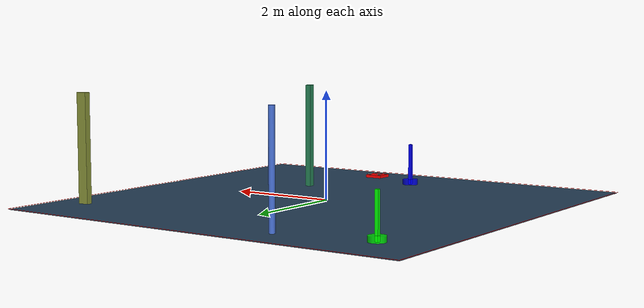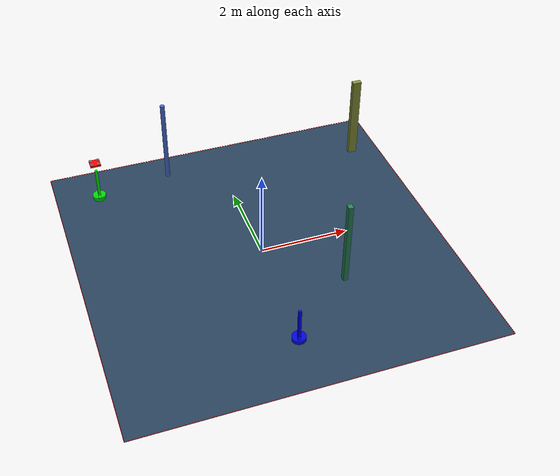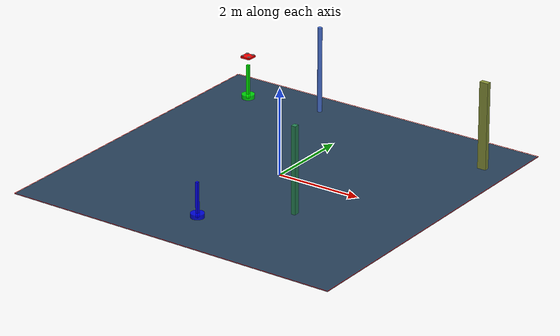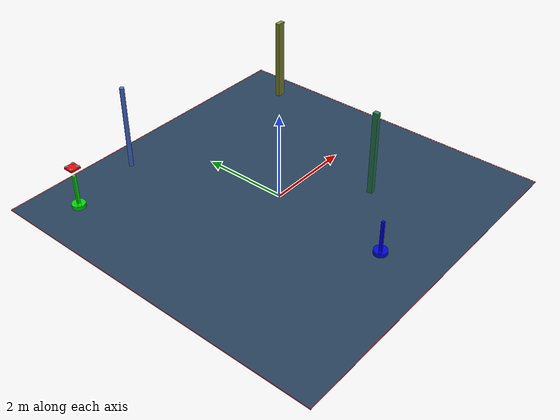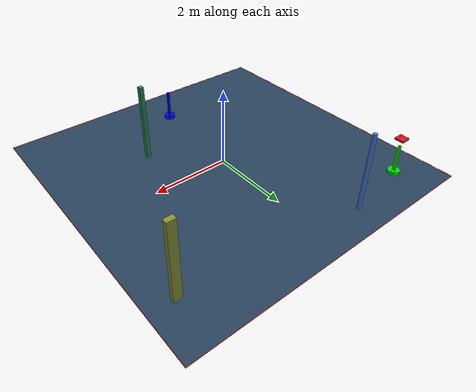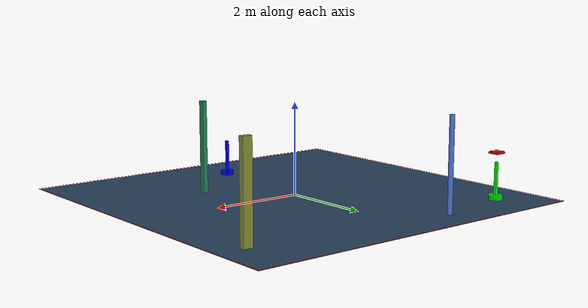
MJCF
<?xml version='1.0' encoding='utf-8'?>
<mujoco model="complex_uav_env">
  <compiler angle="degree" coordinate="local" inertiafromgeom="true" />
  <option integrator="RK4" timestep="0.01" />

  <visual>
    <headlight diffuse="0.6 0.6 0.6" ambient="0.3 0.3 0.3" />
    <rgba haze="0.15 0.25 0.35 1" />
    <global offwidth="2560" offheight="1440" />
  </visual>

  <asset>
    <texture type="skybox" builtin="gradient" rgb1="0.3 0.5 0.7" rgb2="0 0 0" width="512" height="3072" />
    <texture name="grid" type="2d" builtin="checker" rgb1="0.1 0.2 0.3" rgb2="0.2 0.3 0.4" width="512" height="512" />
    <material name="grid" texture="grid" texrepeat="1 1" />
  </asset>

  <worldbody>

    <geom name="ground" type="plane" size="4.0 4.0 0.1" material="grid" />
    <light name="light1" pos="0 0 4" dir="0 0 -1" diffuse="1 1 1" />

    <geom name="start_marker" type="cylinder" size="0.15 0.05" pos="-3.0 3.0 0.05" rgba="0 1 0 0.8" />
    <geom name="start_pole" type="box" size="0.03 0.03 0.4" pos="-3.0 3.0 0.4" rgba="0 1 0 1" />

    <geom name="goal_marker" type="cylinder" size="0.15 0.05" pos="-0.15718928223503115 -2.718806011651705 0.05" rgba="0 0 1 0.8" />
    <geom name="goal_pole" type="box" size="0.03 0.03 0.4" pos="-0.15718928223503115 -2.718806011651705 0.4" rgba="0 0 1 1" />

    <body name="chassis" pos="-3.0 3.0 1.0">
      <joint type="free" name="root" />
      <geom type="box" size="0.12 0.12 0.02" rgba="1.0 0.0 0.0 1.0" mass="0.8" />

      <geom type="box" size="0.08 0.01 0.005" pos="0 0 0.01" rgba="0.3 0.3 0.3 1" />
      <geom type="box" size="0.01 0.08 0.005" pos="0 0 0.01" rgba="0.3 0.3 0.3 1" />

      <geom type="cylinder" size="0.015 0.02" pos="0.08 0.08 0.015" rgba="0.2 0.2 0.2 1" />
      <geom type="cylinder" size="0.015 0.02" pos="-0.08 0.08 0.015" rgba="0.2 0.2 0.2 1" />
      <geom type="cylinder" size="0.015 0.02" pos="0.08 -0.08 0.015" rgba="0.2 0.2 0.2 1" />
      <geom type="cylinder" size="0.015 0.02" pos="-0.08 -0.08 0.015" rgba="0.2 0.2 0.2 1" />

      <geom type="cylinder" size="0.04 0.002" pos="0.08 0.08 0.035" rgba="0.7 0.7 0.7 0.8" />
      <geom type="cylinder" size="0.04 0.002" pos="-0.08 0.08 0.035" rgba="0.7 0.7 0.7 0.8" />
      <geom type="cylinder" size="0.04 0.002" pos="0.08 -0.08 0.035" rgba="0.7 0.7 0.7 0.8" />
      <geom type="cylinder" size="0.04 0.002" pos="-0.08 -0.08 0.035" rgba="0.7 0.7 0.7 0.8" />

      <site name="motor1" pos="0.08 0.08 0" size="0.01" />
      <site name="motor2" pos="-0.08 0.08 0" size="0.01" />
      <site name="motor3" pos="0.08 -0.08 0" size="0.01" />
      <site name="motor4" pos="-0.08 -0.08 0" size="0.01" />
    </body>
    <geom name="test_obs_0" type="box" size="0.10217616707815844 0.056125187748186256 1.0" pos="3.3440860942040085 2.785387102374175 1.0" rgba="0.5236652199045103 0.5672583199019189 0.21358311548757003 1.0" />
    <geom name="test_obs_1" type="box" size="0.05244403324068014 0.06105610109046641 1.0" pos="1.3813607180903684 -1.4121116767342587 1.0" rgba="0.14643609200484697 0.509636410469764 0.3312891432281604 1.0" />
    <geom name="test_obs_2" type="cylinder" size="0.05366289940991442 1.0" pos="-1.264003202606545 3.309162498679078 1.0" rgba="0.2742029575658108 0.43232681471922907 0.8156366066566911 1.0" />
  <geom name="boundary_north" type="box" size="4.0 0.005 0.002" pos="0 4.0 0.002" rgba="1.0 0.0 0.0 1.0" /><geom name="boundary_south" type="box" size="4.0 0.005 0.002" pos="0 -4.0 0.002" rgba="1.0 0.0 0.0 1.0" /><geom name="boundary_east" type="box" size="0.005 4.0 0.002" pos="4.0 0 0.002" rgba="1.0 0.0 0.0 1.0" /><geom name="boundary_west" type="box" size="0.005 4.0 0.002" pos="-4.0 0 0.002" rgba="1.0 0.0 0.0 1.0" /></worldbody>

  <actuator>
    <motor name="m1" gear="0 0 1 0 0 0" site="motor1" />
    <motor name="m2" gear="0 0 1 0 0 0" site="motor2" />
    <motor name="m3" gear="0 0 1 0 0 0" site="motor3" />
    <motor name="m4" gear="0 0 1 0 0 0" site="motor4" />
  </actuator>
</mujoco>
